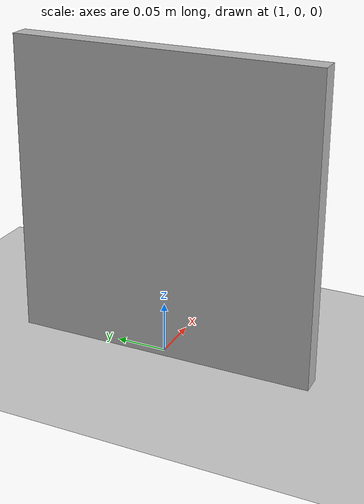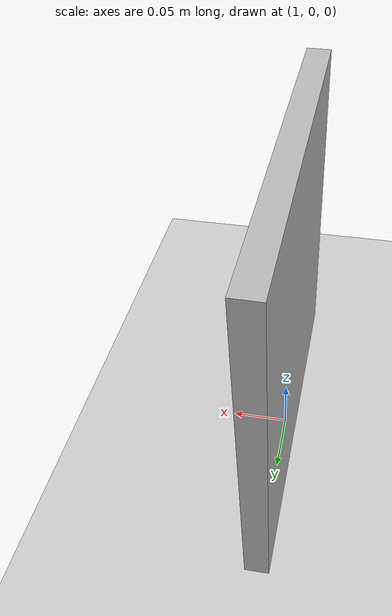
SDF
<?xml version="1.0"?>
<sdf version="1.6">
  <world name="cup_world">
    <include>
      <uri>model://ground_plane</uri>
    </include>
    <include>
      <uri>model://sun</uri>
    </include>

    <!-- YOLO target: a textured mug billboard directly ahead of the robot. -->
    <include>
      <uri>model://cup</uri>
      <pose>1.0 0 0 0 0 0</pose>
    </include>
  </world>
</sdf>

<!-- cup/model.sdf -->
<sdf version="1.6">
  <model name="cup">
    <static>true</static>
    <link name="cup_link">
      <pose>0 0 0.15 0 0 0</pose>
      <collision name="collision">
        <geometry>
          <box>
            <size>0.02 0.3 0.3</size>
          </box>
        </geometry>
      </collision>
      <visual name="visual">
        <geometry>
          <box>
            <size>0.02 0.3 0.3</size>
          </box>
        </geometry>
        <material>
          <script>
            <uri>model://cup/materials/scripts</uri>
            <uri>model://cup/materials/textures</uri>
            <name>Cup/Diffuse</name>
          </script>
        </material>
      </visual>
    </link>
  </model>
</sdf>
